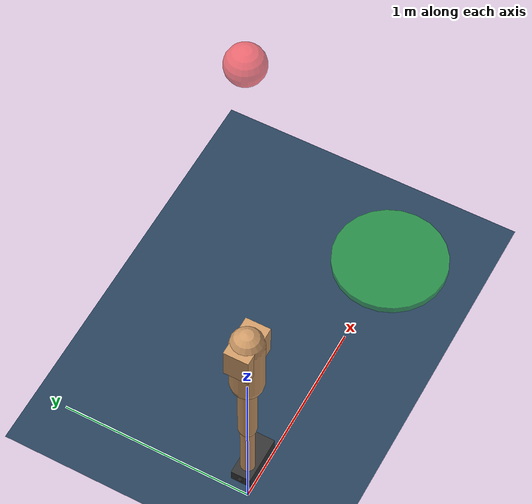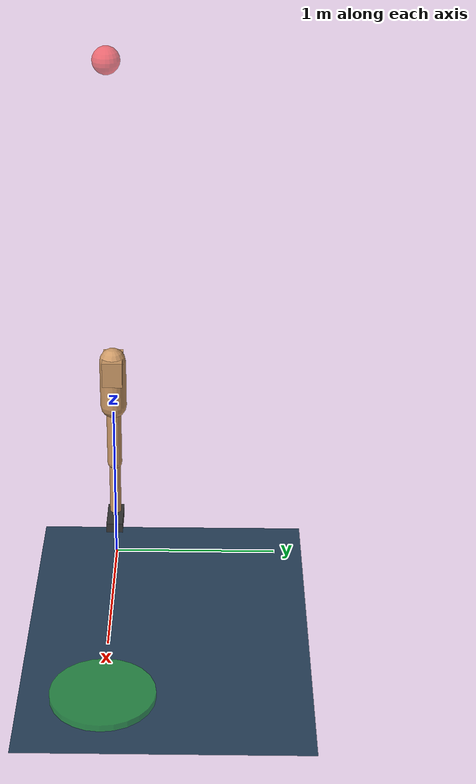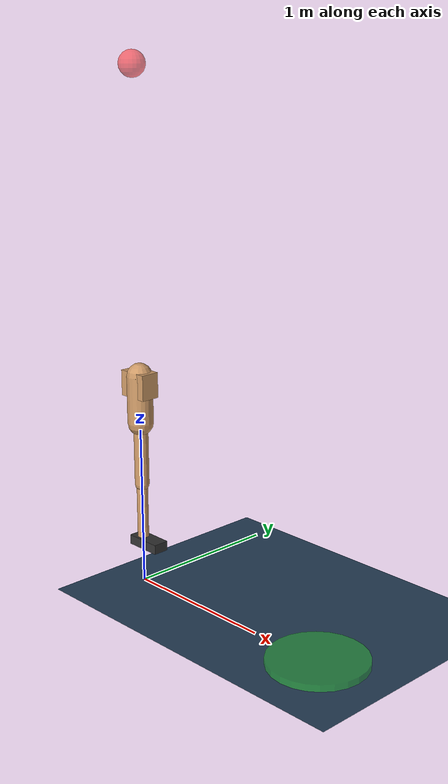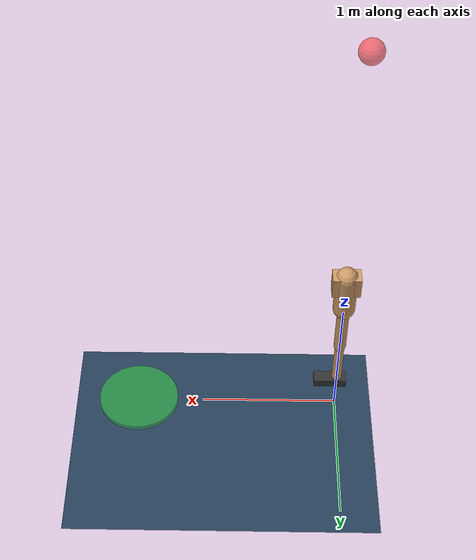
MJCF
<mujoco model="auto_jumping_humanoid_v2">
  <compiler angle="radian" coordinate="local" inertiafromgeom="true"/>

  <option timestep="0.002" gravity="0 0 -9.81">
    <flag warmstart="enable"/>
  </option>

  <size nconmax="50" njmax="200"/>

  <visual>
    <rgba haze="0.15 0.25 0.35 1"/>
    <quality shadowsize="2048"/>
    <map stiffness="700" shadowscale="0.5" fogstart="10" fogend="15"/>
  </visual>

  <asset>
    <texture type="skybox" builtin="gradient" rgb1="0.4 0.6 0.8" rgb2="0.1 0.1 0.2" width="512" height="512"/>
    <texture name="grid" type="2d" builtin="checker" rgb1="0.2 0.3 0.4" rgb2="0.1 0.2 0.3" width="512" height="512" mark="cross" markrgb="1 1 1"/>
    <material name="grid" texture="grid" texrepeat="2 2" texuniform="true" reflectance="0.2"/>
    <material name="body" rgba="0.8 0.6 0.4 1" specular="0.3" shininess="0.1"/>
    <material name="foot" rgba="0.2 0.2 0.2 1" specular="0.1"/>
    <material name="target" rgba="1 0.2 0.2 0.6"/>
    <material name="landing" rgba="0.2 1 0.2 0.4"/>
  </asset>

  <default>
    <geom contype="1" conaffinity="1" condim="3" material="body" solimp="0.9 0.95 0.001" solref="0.02 1"/>
    <joint type="hinge" pos="0 0 0" axis="0 1 0" limited="true" damping="1.0"/>
    <position ctrlrange="-3.14 3.14" kp="100"/>
  </default>

  <worldbody>
    <!-- Ground plane with better friction -->
    <geom name="ground" type="plane" size="20 20 0.1" material="grid"
          contype="1" conaffinity="1" friction="1.0 0.1 0.05"/>

    <!-- Lighting setup -->
    <light pos="0 4 6" dir="0 -1 -1" diffuse="0.8 0.8 0.8"/>
    <light pos="3 -2 4" dir="-1 1 -1" diffuse="0.4 0.4 0.6"/>

    <!-- Jump target visualization -->
    <geom name="jump_target" type="sphere" size="0.08" pos="0 0 3.2"
          material="target" contype="0" conaffinity="0"/>
    <geom name="landing_zone" type="cylinder" size="0.3 0.02" pos="1.5 0 0.02"
          material="landing" contype="0" conaffinity="0"/>

    <!-- Humanoid body -->
    <body name="torso" pos="0 0 1.2">
      <!-- Root joints for 2D planar motion -->
      <joint name="root_x" type="slide" axis="1 0 0" range="-10 10" damping="0.1"/>
      <joint name="root_z" type="slide" axis="0 0 1" range="0 6" damping="0.2"/>
      <joint name="root_rot" type="hinge" axis="0 1 0" range="-1.57 1.57" damping="0.5"/>

      <!-- Torso with improved geometry -->
      <geom name="torso" type="capsule" fromto="0 0 -0.15 0 0 0.15" size="0.08" mass="12"/>
      <geom name="chest" type="box" size="0.1 0.06 0.08" pos="0 0 0.1" mass="3"/>

      <!-- Visual sites -->
      <site name="torso_center" pos="0 0 0" size="0.02" rgba="0 0 1 0.5"/>
      <site name="com_marker" pos="0 0 0" size="0.03" rgba="1 1 0 0.7"/>

      <!-- Thigh -->
      <body name="thigh" pos="0 0 -0.2">
        <joint name="hip" range="-1.2 2.0" stiffness="10" armature="0.01" damping="2.0"/>
        <geom name="thigh" type="capsule" fromto="0 0 0 0 0 -0.35" size="0.045" mass="4"/>
        <site name="hip_marker" pos="0 0 0" size="0.015" rgba="1 0 0 0.8"/>

        <!-- Shin -->
        <body name="shin" pos="0 0 -0.35">
          <joint name="knee" range="-0.2 2.2" stiffness="8" armature="0.01" damping="1.8"/>
          <geom name="shin" type="capsule" fromto="0 0 0 0 0 -0.35" size="0.035" mass="2"/>
          <site name="knee_marker" pos="0 0 0" size="0.015" rgba="0 1 0 0.8"/>

          <!-- Foot -->
          <body name="foot" pos="0 0 -0.35">
            <joint name="ankle" range="-1.0 1.0" stiffness="5" armature="0.01" damping="1.2"/>
            <!-- Foot geometry with better ground contact -->
            <geom name="foot_main" type="box" size="0.12 0.05 0.03" pos="0.05 0 -0.03"
                  mass="0.8" material="foot" friction="1.8 0.1 0.05"/>
            <geom name="heel" type="sphere" size="0.025" pos="-0.05 0 -0.03"
                  mass="0.2" material="foot" friction="1.5 0.1 0.05"/>
            <geom name="toe" type="sphere" size="0.02" pos="0.15 0 -0.03"
                  mass="0.15" material="foot" friction="2.0 0.1 0.05"/>

            <!-- Contact sites -->
            <site name="heel_contact" pos="-0.05 0 -0.055" size="0.01"/>
            <site name="toe_contact" pos="0.15 0 -0.05" size="0.01"/>
            <site name="foot_center" pos="0.05 0 -0.055" size="0.015" rgba="0 0 1 0.6"/>
          </body>
        </body>
      </body>
    </body>
  </worldbody>

  <!-- Position-controlled actuators for smooth jumping -->
  <actuator>
    <position name="hip_ctrl" joint="hip" kp="150" kv="15" ctrlrange="-1.2 2.0"/>
    <position name="knee_ctrl" joint="knee" kp="120" kv="12" ctrlrange="-0.2 2.2"/>
    <position name="ankle_ctrl" joint="ankle" kp="80" kv="8" ctrlrange="-1.0 1.0"/>
  </actuator>

  <!-- Jump sequence keyframes -->
  <keyframe>
    <!-- Initial crouch position -->
    <key name="crouch" time="0.0"
         qpos="0 1.2 0 -0.8 1.6 -0.4"
         ctrl="-0.8 1.6 -0.4"/>

    <!-- Pre-jump loading -->
    <key name="load" time="0.3"
         qpos="0 1.2 0 -1.0 1.8 -0.5"
         ctrl="-1.0 1.8 -0.5"/>

    <!-- Jump extension -->
    <key name="extend" time="0.5"
         qpos="0 1.2 0 0.3 0.2 -0.2"
         ctrl="0.3 0.2 -0.2"/>

    <!-- Flight position -->
    <key name="flight" time="0.8"
         qpos="0 2.0 0 -0.2 0.8 0.1"
         ctrl="-0.2 0.8 0.1"/>

    <!-- Landing preparation -->
    <key name="land_prep" time="1.2"
         qpos="0 1.5 0 -0.4 1.2 -0.2"
         ctrl="-0.4 1.2 -0.2"/>
  </keyframe>

  <!-- Comprehensive sensor suite -->
  <sensor>
    <!-- Joint positions and velocities -->
    <jointpos name="hip_pos" joint="hip"/>
    <jointpos name="knee_pos" joint="knee"/>
    <jointpos name="ankle_pos" joint="ankle"/>
    <jointpos name="root_x_pos" joint="root_x"/>
    <jointpos name="root_z_pos" joint="root_z"/>
    <jointpos name="root_rot_pos" joint="root_rot"/>

    <jointvel name="hip_vel" joint="hip"/>
    <jointvel name="knee_vel" joint="knee"/>
    <jointvel name="ankle_vel" joint="ankle"/>
    <jointvel name="root_x_vel" joint="root_x"/>
    <jointvel name="root_z_vel" joint="root_z"/>
    <jointvel name="root_rot_vel" joint="root_rot"/>

    <!-- Body state sensors -->
    <framepos name="torso_pos" objtype="body" objname="torso"/>
    <framequat name="torso_quat" objtype="body" objname="torso"/>
    <framelinvel name="torso_vel" objtype="body" objname="torso"/>
    <frameangvel name="torso_angvel" objtype="body" objname="torso"/>

    <!-- Contact sensors -->
    <touch name="heel_contact" site="heel_contact"/>
    <touch name="toe_contact" site="toe_contact"/>
    <touch name="foot_contact" site="foot_center"/>

    <!-- Center of mass -->
    <subtreecom name="body_com" body="torso"/>

    <!-- Custom sensors for jump control -->
    <user name="jump_phase" dim="1"/>
    <user name="jump_timer" dim="1"/>
    <user name="ground_contact" dim="1"/>
  </sensor>
</mujoco>
